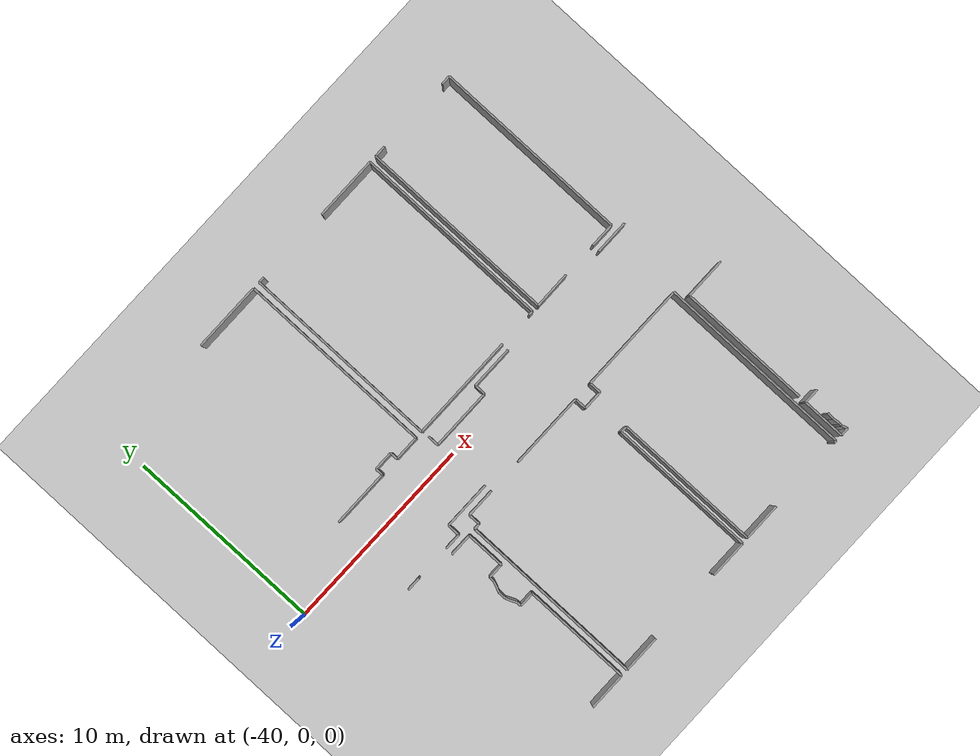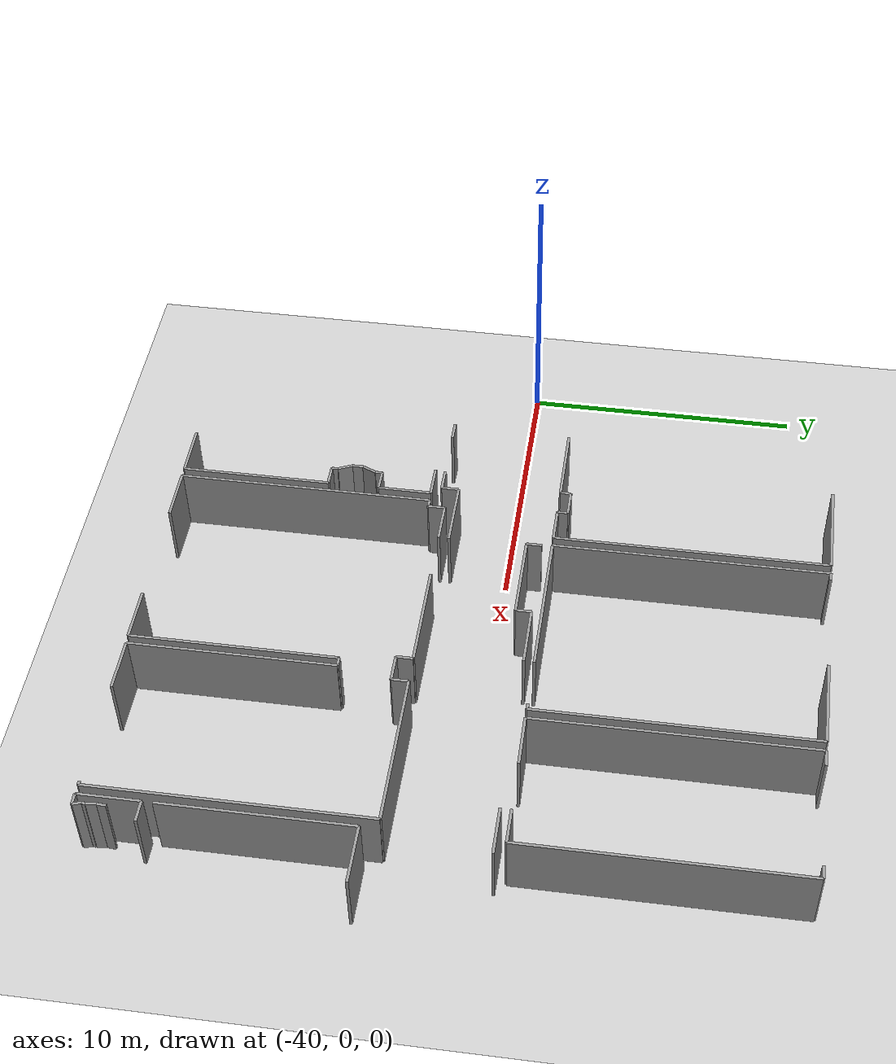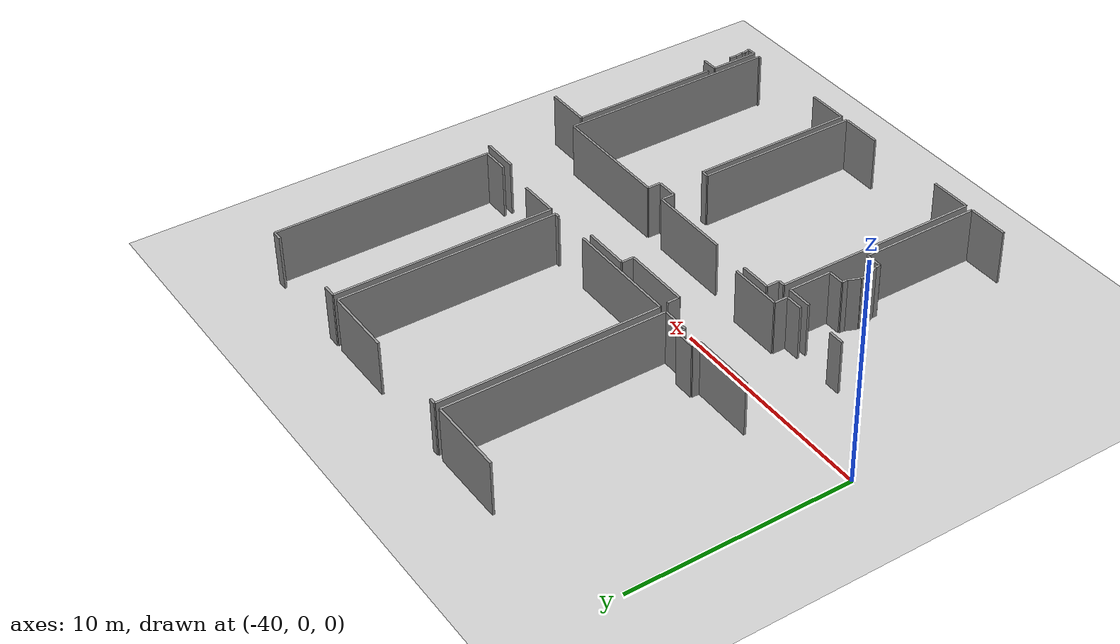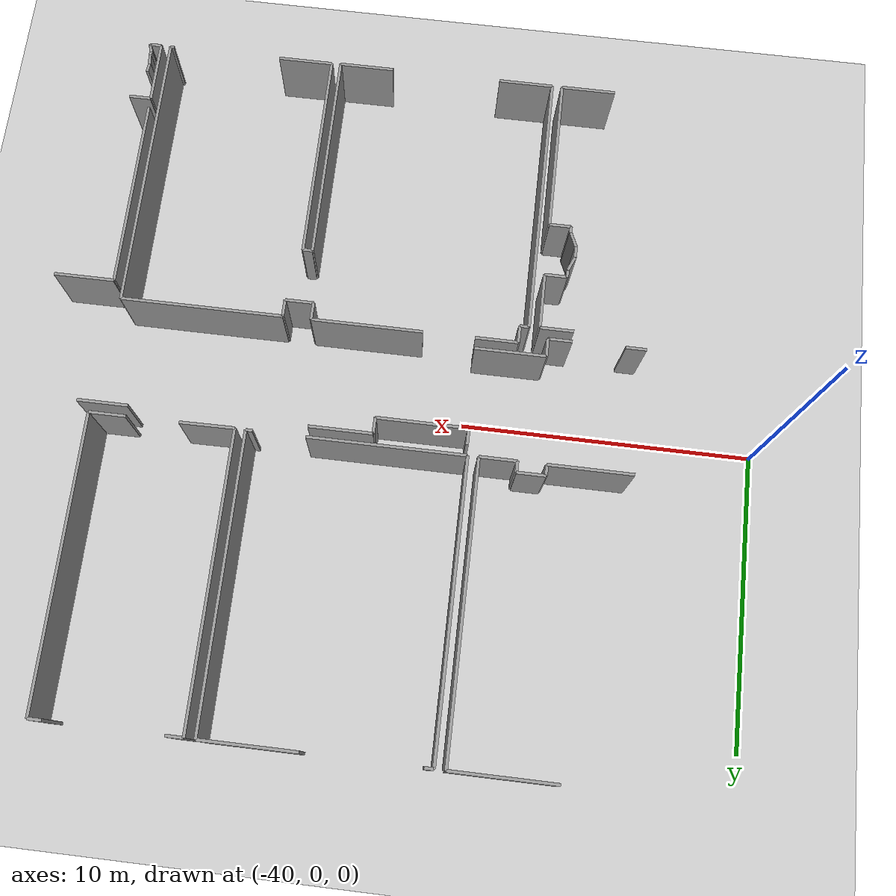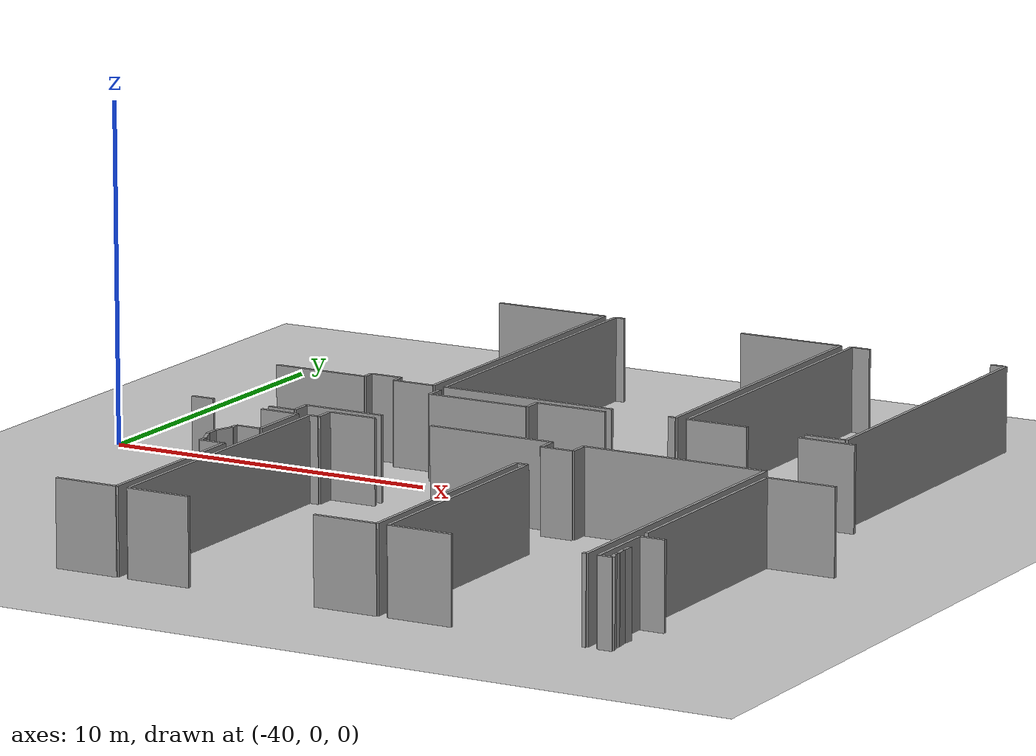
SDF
<sdf version="1.6">
 <world name="default">
  <model name="ground_plane">
   <static>1</static>
   <link name="link">
    <collision name="collision">
     <geometry><plane><normal>0 0 1</normal><size>100 100</size></plane></geometry>
     <surface><friction><ode><mu>100</mu><mu2>50</mu2></ode></friction></surface>
    </collision>
    <visual name="visual">
     <cast_shadows>0</cast_shadows>
     <geometry><plane><normal>0 0 1</normal><size>100 100</size></plane></geometry>
     <material>
      <script><uri>file://media/materials/scripts/gazebo.material</uri><name>Gazebo/Grey</name></script>
     </material>
    </visual>
   </link>
  </model>
  <model name="0510034689_Layout1">
   <static>1</static>
   <link name="Wall_8">
    <collision name="Wall_8_Collision">
     <geometry><box><size>1.89593007687 0.1 2.5</size></box></geometry>
     <pose>0.947965038435 0 1.25 0 0 0</pose>
    </collision>
    <visual name="Wall_8_Visual">
     <pose>0.947965038435 0 1.25 0 0 0</pose>
     <geometry><box><size>1.89593007687 0.1 2.5</size></box></geometry>
     <material>
      <script><uri>file://media/materials/scripts/gazebo.material</uri><name>Gazebo/Grey</name></script>
      <ambient>1 1 1 1</ambient>
     </material>
    </visual>
    <pose>22.2949142777 -24.6649855131 0 0 0 0.0</pose>
   </link>
   <link name="Wall_9">
    <collision name="Wall_9_Collision">
     <geometry><box><size>5.42977926292 0.1 2.5</size></box></geometry>
     <pose>2.71488963146 0 1.25 0 0 0</pose>
    </collision>
    <visual name="Wall_9_Visual">
     <pose>2.71488963146 0 1.25 0 0 0</pose>
     <geometry><box><size>5.42977926292 0.1 2.5</size></box></geometry>
     <material>
      <script><uri>file://media/materials/scripts/gazebo.material</uri><name>Gazebo/Grey</name></script>
      <ambient>1 1 1 1</ambient>
     </material>
    </visual>
    <pose>24.1908443545 -24.6649855131 0 0 0 1.57079632679</pose>
   </link>
   <link name="Wall_10">
    <collision name="Wall_10_Collision">
     <geometry><box><size>0.755630743536 0.1 2.5</size></box></geometry>
     <pose>0.377815371768 0 1.25 0 0 0</pose>
    </collision>
    <visual name="Wall_10_Visual">
     <pose>0.377815371768 0 1.25 0 0 0</pose>
     <geometry><box><size>0.755630743536 0.1 2.5</size></box></geometry>
     <material>
      <script><uri>file://media/materials/scripts/gazebo.material</uri><name>Gazebo/Grey</name></script>
      <ambient>1 1 1 1</ambient>
     </material>
    </visual>
    <pose>24.1908443545 -19.2352062501 0 0 0 3.14159265359</pose>
   </link>
   <link name="Wall_11">
    <collision name="Wall_11_Collision">
     <geometry><box><size>0.221333560082 0.1 2.5</size></box></geometry>
     <pose>0.110666780041 0 1.25 0 0 0</pose>
    </collision>
    <visual name="Wall_11_Visual">
     <pose>0.110666780041 0 1.25 0 0 0</pose>
     <geometry><box><size>0.221333560082 0.1 2.5</size></box></geometry>
     <material>
      <script><uri>file://media/materials/scripts/gazebo.material</uri><name>Gazebo/Grey</name></script>
      <ambient>1 1 1 1</ambient>
     </material>
    </visual>
    <pose>23.435213611 -19.2352062501 0 0 0 1.57079632679</pose>
   </link>
   <link name="Wall_12">
    <collision name="Wall_12_Collision">
     <geometry><box><size>0.56188615846 0.1 2.5</size></box></geometry>
     <pose>0.28094307923 0 1.25 0 0 0</pose>
    </collision>
    <visual name="Wall_12_Visual">
     <pose>0.28094307923 0 1.25 0 0 0</pose>
     <geometry><box><size>0.56188615846 0.1 2.5</size></box></geometry>
     <material>
      <script><uri>file://media/materials/scripts/gazebo.material</uri><name>Gazebo/Grey</name></script>
      <ambient>1 1 1 1</ambient>
     </material>
    </visual>
    <pose>23.435213611 -19.0138726901 0 0 0 1.98331023317</pose>
   </link>
   <link name="Wall_13">
    <collision name="Wall_13_Collision">
     <geometry><box><size>0.396224868674 0.1 2.5</size></box></geometry>
     <pose>0.198112434337 0 1.25 0 0 0</pose>
    </collision>
    <visual name="Wall_13_Visual">
     <pose>0.198112434337 0 1.25 0 0 0</pose>
     <geometry><box><size>0.396224868674 0.1 2.5</size></box></geometry>
     <material>
      <script><uri>file://media/materials/scripts/gazebo.material</uri><name>Gazebo/Grey</name></script>
      <ambient>1 1 1 1</ambient>
     </material>
    </visual>
    <pose>23.2099457961 -18.4991198691 0 0 0 1.57688209407</pose>
   </link>
   <link name="Wall_14">
    <collision name="Wall_14_Collision">
     <geometry><box><size>0.553743081985 0.1 2.5</size></box></geometry>
     <pose>0.276871540993 0 1.25 0 0 0</pose>
    </collision>
    <visual name="Wall_14_Visual">
     <pose>0.276871540993 0 1.25 0 0 0</pose>
     <geometry><box><size>0.553743081985 0.1 2.5</size></box></geometry>
     <material>
      <script><uri>file://media/materials/scripts/gazebo.material</uri><name>Gazebo/Grey</name></script>
      <ambient>1 1 1 1</ambient>
     </material>
    </visual>
    <pose>23.2075344787 -18.1029023378 0 0 0 1.17032835829</pose>
   </link>
   <link name="Wall_15">
    <collision name="Wall_15_Collision">
     <geometry><box><size>0.246715849082 0.1 2.5</size></box></geometry>
     <pose>0.123357924541 0 1.25 0 0 0</pose>
    </collision>
    <visual name="Wall_15_Visual">
     <pose>0.123357924541 0 1.25 0 0 0</pose>
     <geometry><box><size>0.246715849082 0.1 2.5</size></box></geometry>
     <material>
      <script><uri>file://media/materials/scripts/gazebo.material</uri><name>Gazebo/Grey</name></script>
      <ambient>1 1 1 1</ambient>
     </material>
    </visual>
    <pose>23.4234108466 -17.5929721518 0 0 0 1.57079632679</pose>
   </link>
   <link name="Wall_16">
    <collision name="Wall_16_Collision">
     <geometry><box><size>0.766164393471 0.1 2.5</size></box></geometry>
     <pose>0.383082196736 0 1.25 0 0 0</pose>
    </collision>
    <visual name="Wall_16_Visual">
     <pose>0.383082196736 0 1.25 0 0 0</pose>
     <geometry><box><size>0.766164393471 0.1 2.5</size></box></geometry>
     <material>
      <script><uri>file://media/materials/scripts/gazebo.material</uri><name>Gazebo/Grey</name></script>
      <ambient>1 1 1 1</ambient>
     </material>
    </visual>
    <pose>23.4234108466 -17.3462563027 0 0 0 0.0</pose>
   </link>
   <link name="Wall_17">
    <collision name="Wall_17_Collision">
     <geometry><box><size>1.94580627476 0.1 2.5</size></box></geometry>
     <pose>0.972903137378 0 1.25 0 0 0</pose>
    </collision>
    <visual name="Wall_17_Visual">
     <pose>0.972903137378 0 1.25 0 0 0</pose>
     <geometry><box><size>1.94580627476 0.1 2.5</size></box></geometry>
     <material>
      <script><uri>file://media/materials/scripts/gazebo.material</uri><name>Gazebo/Grey</name></script>
      <ambient>1 1 1 1</ambient>
     </material>
    </visual>
    <pose>24.1895752401 -17.3462563027 0 0 0 1.57079632679</pose>
   </link>
   <link name="Wall_18">
    <collision name="Wall_18_Collision">
     <geometry><box><size>1.15311738928 0.1 2.5</size></box></geometry>
     <pose>0.57655869464 0 1.25 0 0 0</pose>
    </collision>
    <visual name="Wall_18_Visual">
     <pose>0.57655869464 0 1.25 0 0 0</pose>
     <geometry><box><size>1.15311738928 0.1 2.5</size></box></geometry>
     <material>
      <script><uri>file://media/materials/scripts/gazebo.material</uri><name>Gazebo/Grey</name></script>
      <ambient>1 1 1 1</ambient>
     </material>
    </visual>
    <pose>24.1895752401 -15.400450028 0 0 0 3.14159265359</pose>
   </link>
   <link name="Wall_53">
    <collision name="Wall_53_Collision">
     <geometry><box><size>3.50148676758 0.1 2.5</size></box></geometry>
     <pose>1.75074338379 0 1.25 0 0 0</pose>
    </collision>
    <visual name="Wall_53_Visual">
     <pose>1.75074338379 0 1.25 0 0 0</pose>
     <geometry><box><size>3.50148676758 0.1 2.5</size></box></geometry>
     <material>
      <script><uri>file://media/materials/scripts/gazebo.material</uri><name>Gazebo/Grey</name></script>
      <ambient>1 1 1 1</ambient>
     </material>
    </visual>
    <pose>22.2826038675 -0.748650614061 0 0 0 0.0</pose>
   </link>
   <link name="Wall_54">
    <collision name="Wall_54_Collision">
     <geometry><box><size>9.92942454543 0.1 2.5</size></box></geometry>
     <pose>4.96471227272 0 1.25 0 0 0</pose>
    </collision>
    <visual name="Wall_54_Visual">
     <pose>4.96471227272 0 1.25 0 0 0</pose>
     <geometry><box><size>9.92942454543 0.1 2.5</size></box></geometry>
     <material>
      <script><uri>file://media/materials/scripts/gazebo.material</uri><name>Gazebo/Grey</name></script>
      <ambient>1 1 1 1</ambient>
     </material>
    </visual>
    <pose>25.7840906351 -0.748650614061 0 0 0 -1.57079632679</pose>
   </link>
   <link name="Wall_55">
    <collision name="Wall_55_Collision">
     <geometry><box><size>1.26632239822 0.1 2.5</size></box></geometry>
     <pose>0.63316119911 0 1.25 0 0 0</pose>
    </collision>
    <visual name="Wall_55_Visual">
     <pose>0.63316119911 0 1.25 0 0 0</pose>
     <geometry><box><size>1.26632239822 0.1 2.5</size></box></geometry>
     <material>
      <script><uri>file://media/materials/scripts/gazebo.material</uri><name>Gazebo/Grey</name></script>
      <ambient>1 1 1 1</ambient>
     </material>
    </visual>
    <pose>25.7840906351 -10.6780751595 0 0 0 3.14159265359</pose>
   </link>
   <link name="Wall_56">
    <collision name="Wall_56_Collision">
     <geometry><box><size>0.382384183788 0.1 2.5</size></box></geometry>
     <pose>0.191192091894 0 1.25 0 0 0</pose>
    </collision>
    <visual name="Wall_56_Visual">
     <pose>0.191192091894 0 1.25 0 0 0</pose>
     <geometry><box><size>0.382384183788 0.1 2.5</size></box></geometry>
     <material>
      <script><uri>file://media/materials/scripts/gazebo.material</uri><name>Gazebo/Grey</name></script>
      <ambient>1 1 1 1</ambient>
     </material>
    </visual>
    <pose>24.5177682369 -10.6780751595 0 0 0 1.57079632679</pose>
   </link>
   <link name="Wall_57">
    <collision name="Wall_57_Collision">
     <geometry><box><size>0.970364908478 0.1 2.5</size></box></geometry>
     <pose>0.485182454239 0 1.25 0 0 0</pose>
    </collision>
    <visual name="Wall_57_Visual">
     <pose>0.485182454239 0 1.25 0 0 0</pose>
     <geometry><box><size>0.970364908478 0.1 2.5</size></box></geometry>
     <material>
      <script><uri>file://media/materials/scripts/gazebo.material</uri><name>Gazebo/Grey</name></script>
      <ambient>1 1 1 1</ambient>
     </material>
    </visual>
    <pose>24.5177682369 -10.2956909757 0 0 0 3.14159265359</pose>
   </link>
   <link name="Wall_58">
    <collision name="Wall_58_Collision">
     <geometry><box><size>0.378830663328 0.1 2.5</size></box></geometry>
     <pose>0.189415331664 0 1.25 0 0 0</pose>
    </collision>
    <visual name="Wall_58_Visual">
     <pose>0.189415331664 0 1.25 0 0 0</pose>
     <geometry><box><size>0.378830663328 0.1 2.5</size></box></geometry>
     <material>
      <script><uri>file://media/materials/scripts/gazebo.material</uri><name>Gazebo/Grey</name></script>
      <ambient>1 1 1 1</ambient>
     </material>
    </visual>
    <pose>23.5474033284 -10.2956909757 0 0 0 -1.57079632679</pose>
   </link>
   <link name="Wall_59">
    <collision name="Wall_59_Collision">
     <geometry><box><size>2.88253965031 0.1 2.5</size></box></geometry>
     <pose>1.44126982515 0 1.25 0 0 0</pose>
    </collision>
    <visual name="Wall_59_Visual">
     <pose>1.44126982515 0 1.25 0 0 0</pose>
     <geometry><box><size>2.88253965031 0.1 2.5</size></box></geometry>
     <material>
      <script><uri>file://media/materials/scripts/gazebo.material</uri><name>Gazebo/Grey</name></script>
      <ambient>1 1 1 1</ambient>
     </material>
    </visual>
    <pose>23.5474033284 -10.674521639 0 0 0 3.14159265359</pose>
   </link>
   <link name="Wall_66">
    <collision name="Wall_66_Collision">
     <geometry><box><size>9.91990618706 0.1 2.5</size></box></geometry>
     <pose>4.95995309353 0 1.25 0 0 0</pose>
    </collision>
    <visual name="Wall_66_Visual">
     <pose>4.95995309353 0 1.25 0 0 0</pose>
     <geometry><box><size>9.91990618706 0.1 2.5</size></box></geometry>
     <material>
      <script><uri>file://media/materials/scripts/gazebo.material</uri><name>Gazebo/Grey</name></script>
      <ambient>1 1 1 1</ambient>
     </material>
    </visual>
    <pose>26.1546720545 -10.6724910559 0 0 0 1.57079632679</pose>
   </link>
   <link name="Wall_67">
    <collision name="Wall_67_Collision">
     <geometry><box><size>0.303445264997 0.1 2.5</size></box></geometry>
     <pose>0.151722632499 0 1.25 0 0 0</pose>
    </collision>
    <visual name="Wall_67_Visual">
     <pose>0.151722632499 0 1.25 0 0 0</pose>
     <geometry><box><size>0.303445264997 0.1 2.5</size></box></geometry>
     <material>
      <script><uri>file://media/materials/scripts/gazebo.material</uri><name>Gazebo/Grey</name></script>
      <ambient>1 1 1 1</ambient>
     </material>
    </visual>
    <pose>26.1546720545 -0.752584868856 0 0 0 0.0</pose>
   </link>
   <link name="Wall_68">
    <collision name="Wall_68_Collision">
     <geometry><box><size>3.20540236639 0.1 2.5</size></box></geometry>
     <pose>1.6027011832 0 1.25 0 0 0</pose>
    </collision>
    <visual name="Wall_68_Visual">
     <pose>1.6027011832 0 1.25 0 0 0</pose>
     <geometry><box><size>3.20540236639 0.1 2.5</size></box></geometry>
     <material>
      <script><uri>file://media/materials/scripts/gazebo.material</uri><name>Gazebo/Grey</name></script>
      <ambient>1 1 1 1</ambient>
     </material>
    </visual>
    <pose>30.306960712 -0.752584868856 0 0 0 0.0</pose>
   </link>
   <link name="Wall_69">
    <collision name="Wall_69_Collision">
     <geometry><box><size>9.92523646775 0.1 2.5</size></box></geometry>
     <pose>4.96261823387 0 1.25 0 0 0</pose>
    </collision>
    <visual name="Wall_69_Visual">
     <pose>4.96261823387 0 1.25 0 0 0</pose>
     <geometry><box><size>9.92523646775 0.1 2.5</size></box></geometry>
     <material>
      <script><uri>file://media/materials/scripts/gazebo.material</uri><name>Gazebo/Grey</name></script>
      <ambient>1 1 1 1</ambient>
     </material>
    </visual>
    <pose>33.5123630784 -0.752584868856 0 0 0 -1.57079632679</pose>
   </link>
   <link name="Wall_70">
    <collision name="Wall_70_Collision">
     <geometry><box><size>0.228440601002 0.1 2.5</size></box></geometry>
     <pose>0.114220300501 0 1.25 0 0 0</pose>
    </collision>
    <visual name="Wall_70_Visual">
     <pose>0.114220300501 0 1.25 0 0 0</pose>
     <geometry><box><size>0.228440601002 0.1 2.5</size></box></geometry>
     <material>
      <script><uri>file://media/materials/scripts/gazebo.material</uri><name>Gazebo/Grey</name></script>
      <ambient>1 1 1 1</ambient>
     </material>
    </visual>
    <pose>33.5123630784 -10.6778213366 0 0 0 3.14159265359</pose>
   </link>
   <link name="Wall_71">
    <collision name="Wall_71_Collision">
     <geometry><box><size>5.35668092261 0.1 2.5</size></box></geometry>
     <pose>2.6783404613 0 1.25 0 0 0</pose>
    </collision>
    <visual name="Wall_71_Visual">
     <pose>2.6783404613 0 1.25 0 0 0</pose>
     <geometry><box><size>5.35668092261 0.1 2.5</size></box></geometry>
     <material>
      <script><uri>file://media/materials/scripts/gazebo.material</uri><name>Gazebo/Grey</name></script>
      <ambient>1 1 1 1</ambient>
     </material>
    </visual>
    <pose>31.5113503251 -10.6778213366 0 0 0 3.14059758189</pose>
   </link>
   <link name="Wall_72">
    <collision name="Wall_72_Collision">
     <geometry><box><size>9.93602394057 0.1 2.5</size></box></geometry>
     <pose>4.96801197029 0 1.25 0 0 0</pose>
    </collision>
    <visual name="Wall_72_Visual">
     <pose>4.96801197029 0 1.25 0 0 0</pose>
     <geometry><box><size>9.93602394057 0.1 2.5</size></box></geometry>
     <material>
      <script><uri>file://media/materials/scripts/gazebo.material</uri><name>Gazebo/Grey</name></script>
      <ambient>1 1 1 1</ambient>
     </material>
    </visual>
    <pose>33.8772334828 -10.6931776215 0 0 0 1.57079632679</pose>
   </link>
   <link name="Wall_73">
    <collision name="Wall_73_Collision">
     <geometry><box><size>0.590392042145 0.1 2.5</size></box></geometry>
     <pose>0.295196021072 0 1.25 0 0 0</pose>
    </collision>
    <visual name="Wall_73_Visual">
     <pose>0.295196021072 0 1.25 0 0 0</pose>
     <geometry><box><size>0.590392042145 0.1 2.5</size></box></geometry>
     <material>
      <script><uri>file://media/materials/scripts/gazebo.material</uri><name>Gazebo/Grey</name></script>
      <ambient>1 1 1 1</ambient>
     </material>
    </visual>
    <pose>33.8772334828 -0.757153680876 0 0 0 0.0</pose>
   </link>
   <link name="Wall_74">
    <collision name="Wall_74_Collision">
     <geometry><box><size>0.461196191134 0.1 2.5</size></box></geometry>
     <pose>0.230598095567 0 1.25 0 0 0</pose>
    </collision>
    <visual name="Wall_74_Visual">
     <pose>0.230598095567 0 1.25 0 0 0</pose>
     <geometry><box><size>0.461196191134 0.1 2.5</size></box></geometry>
     <material>
      <script><uri>file://media/materials/scripts/gazebo.material</uri><name>Gazebo/Grey</name></script>
      <ambient>1 1 1 1</ambient>
     </material>
    </visual>
    <pose>38.3098695223 -0.757153680876 0 0 0 0.0</pose>
   </link>
   <link name="Wall_75">
    <collision name="Wall_75_Collision">
     <geometry><box><size>9.91800251538 0.1 2.5</size></box></geometry>
     <pose>4.95900125769 0 1.25 0 0 0</pose>
    </collision>
    <visual name="Wall_75_Visual">
     <pose>4.95900125769 0 1.25 0 0 0</pose>
     <geometry><box><size>9.91800251538 0.1 2.5</size></box></geometry>
     <material>
      <script><uri>file://media/materials/scripts/gazebo.material</uri><name>Gazebo/Grey</name></script>
      <ambient>1 1 1 1</ambient>
     </material>
    </visual>
    <pose>38.7710657135 -0.757153680876 0 0 0 -1.57079632679</pose>
   </link>
   <link name="Wall_76">
    <collision name="Wall_76_Collision">
     <geometry><box><size>1.24957008748 0.1 2.5</size></box></geometry>
     <pose>0.62478504374 0 1.25 0 0 0</pose>
    </collision>
    <visual name="Wall_76_Visual">
     <pose>0.62478504374 0 1.25 0 0 0</pose>
     <geometry><box><size>1.24957008748 0.1 2.5</size></box></geometry>
     <material>
      <script><uri>file://media/materials/scripts/gazebo.material</uri><name>Gazebo/Grey</name></script>
      <ambient>1 1 1 1</ambient>
     </material>
    </visual>
    <pose>38.7710657135 -10.6751561963 0 0 0 3.14159265359</pose>
   </link>
   <link name="Wall_77">
    <collision name="Wall_77_Collision">
     <geometry><box><size>1.85845166818 0.1 2.5</size></box></geometry>
     <pose>0.929225834089 0 1.25 0 0 0</pose>
    </collision>
    <visual name="Wall_77_Visual">
     <pose>0.929225834089 0 1.25 0 0 0</pose>
     <geometry><box><size>1.85845166818 0.1 2.5</size></box></geometry>
     <material>
      <script><uri>file://media/materials/scripts/gazebo.material</uri><name>Gazebo/Grey</name></script>
      <ambient>1 1 1 1</ambient>
     </material>
    </visual>
    <pose>35.7355977719 -10.6751561963 0 0 0 -3.13189549119</pose>
   </link>
   <link name="Wall_84">
    <collision name="Wall_84_Collision">
     <geometry><box><size>0.555745217659 0.1 2.5</size></box></geometry>
     <pose>0.27787260883 0 1.25 0 0 0</pose>
    </collision>
    <visual name="Wall_84_Visual">
     <pose>0.27787260883 0 1.25 0 0 0</pose>
     <geometry><box><size>0.555745217659 0.1 2.5</size></box></geometry>
     <material>
      <script><uri>file://media/materials/scripts/gazebo.material</uri><name>Gazebo/Grey</name></script>
      <ambient>1 1 1 1</ambient>
     </material>
    </visual>
    <pose>26.2111476475 -11.04611835 0 0 0 -1.57079632679</pose>
   </link>
   <link name="Wall_85">
    <collision name="Wall_85_Collision">
     <geometry><box><size>3.10742673085 0.1 2.5</size></box></geometry>
     <pose>1.55371336543 0 1.25 0 0 0</pose>
    </collision>
    <visual name="Wall_85_Visual">
     <pose>1.55371336543 0 1.25 0 0 0</pose>
     <geometry><box><size>3.10742673085 0.1 2.5</size></box></geometry>
     <material>
      <script><uri>file://media/materials/scripts/gazebo.material</uri><name>Gazebo/Grey</name></script>
      <ambient>1 1 1 1</ambient>
     </material>
    </visual>
    <pose>26.2111476475 -11.6018635677 0 0 0 0.0</pose>
   </link>
   <link name="Wall_86">
    <collision name="Wall_86_Collision">
     <geometry><box><size>0.556760509219 0.1 2.5</size></box></geometry>
     <pose>0.27838025461 0 1.25 0 0 0</pose>
    </collision>
    <visual name="Wall_86_Visual">
     <pose>0.27838025461 0 1.25 0 0 0</pose>
     <geometry><box><size>0.556760509219 0.1 2.5</size></box></geometry>
     <material>
      <script><uri>file://media/materials/scripts/gazebo.material</uri><name>Gazebo/Grey</name></script>
      <ambient>1 1 1 1</ambient>
     </material>
    </visual>
    <pose>29.3185743784 -11.6018635677 0 0 0 1.57079632679</pose>
   </link>
   <link name="Wall_87">
    <collision name="Wall_87_Collision">
     <geometry><box><size>2.17564290165 0.1 2.5</size></box></geometry>
     <pose>1.08782145083 0 1.25 0 0 0</pose>
    </collision>
    <visual name="Wall_87_Visual">
     <pose>1.08782145083 0 1.25 0 0 0</pose>
     <geometry><box><size>2.17564290165 0.1 2.5</size></box></geometry>
     <material>
      <script><uri>file://media/materials/scripts/gazebo.material</uri><name>Gazebo/Grey</name></script>
      <ambient>1 1 1 1</ambient>
     </material>
    </visual>
    <pose>29.3185743784 -11.0451030584 0 0 0 0.0</pose>
   </link>
   <link name="Wall_88">
    <collision name="Wall_88_Collision">
     <geometry><box><size>1.71736567375 0.1 2.5</size></box></geometry>
     <pose>0.858682836877 0 1.25 0 0 0</pose>
    </collision>
    <visual name="Wall_88_Visual">
     <pose>0.858682836877 0 1.25 0 0 0</pose>
     <geometry><box><size>1.71736567375 0.1 2.5</size></box></geometry>
     <material>
      <script><uri>file://media/materials/scripts/gazebo.material</uri><name>Gazebo/Grey</name></script>
      <ambient>1 1 1 1</ambient>
     </material>
    </visual>
    <pose>37.5193381314 -11.0451030584 0 0 0 0.0</pose>
   </link>
   <link name="Wall_101">
    <collision name="Wall_101_Collision">
     <geometry><box><size>2.43314622356 0.1 2.5</size></box></geometry>
     <pose>1.21657311178 0 1.25 0 0 0</pose>
    </collision>
    <visual name="Wall_101_Visual">
     <pose>1.21657311178 0 1.25 0 0 0</pose>
     <geometry><box><size>2.43314622356 0.1 2.5</size></box></geometry>
     <material>
      <script><uri>file://media/materials/scripts/gazebo.material</uri><name>Gazebo/Grey</name></script>
      <ambient>1 1 1 1</ambient>
     </material>
    </visual>
    <pose>26.3174994384 -14.4086370853 0 0 0 3.14159265359</pose>
   </link>
   <link name="Wall_102">
    <collision name="Wall_102_Collision">
     <geometry><box><size>0.624404309405 0.1 2.5</size></box></geometry>
     <pose>0.312202154703 0 1.25 0 0 0</pose>
    </collision>
    <visual name="Wall_102_Visual">
     <pose>0.312202154703 0 1.25 0 0 0</pose>
     <geometry><box><size>0.624404309405 0.1 2.5</size></box></geometry>
     <material>
      <script><uri>file://media/materials/scripts/gazebo.material</uri><name>Gazebo/Grey</name></script>
      <ambient>1 1 1 1</ambient>
     </material>
    </visual>
    <pose>23.8843532149 -14.4086370853 0 0 0 -1.57079632679</pose>
   </link>
   <link name="Wall_103">
    <collision name="Wall_103_Collision">
     <geometry><box><size>0.826828064182 0.1 2.5</size></box></geometry>
     <pose>0.413414032091 0 1.25 0 0 0</pose>
    </collision>
    <visual name="Wall_103_Visual">
     <pose>0.413414032091 0 1.25 0 0 0</pose>
     <geometry><box><size>0.826828064182 0.1 2.5</size></box></geometry>
     <material>
      <script><uri>file://media/materials/scripts/gazebo.material</uri><name>Gazebo/Grey</name></script>
      <ambient>1 1 1 1</ambient>
     </material>
    </visual>
    <pose>23.8843532149 -15.0330413947 0 0 0 3.14159265359</pose>
   </link>
   <link name="Wall_104">
    <collision name="Wall_104_Collision">
     <geometry><box><size>0.705881457096 0.1 2.5</size></box></geometry>
     <pose>0.352940728548 0 1.25 0 0 0</pose>
    </collision>
    <visual name="Wall_104_Visual">
     <pose>0.352940728548 0 1.25 0 0 0</pose>
     <geometry><box><size>0.705881457096 0.1 2.5</size></box></geometry>
     <material>
      <script><uri>file://media/materials/scripts/gazebo.material</uri><name>Gazebo/Grey</name></script>
      <ambient>1 1 1 1</ambient>
     </material>
    </visual>
    <pose>21.2599514437 -15.0330413947 0 0 0 3.14159265359</pose>
   </link>
   <link name="Wall_115">
    <collision name="Wall_115_Collision">
     <geometry><box><size>1.90100653467 0.1 2.5</size></box></geometry>
     <pose>0.950503267335 0 1.25 0 0 0</pose>
    </collision>
    <visual name="Wall_115_Visual">
     <pose>0.950503267335 0 1.25 0 0 0</pose>
     <geometry><box><size>1.90100653467 0.1 2.5</size></box></geometry>
     <material>
      <script><uri>file://media/materials/scripts/gazebo.material</uri><name>Gazebo/Grey</name></script>
      <ambient>1 1 1 1</ambient>
     </material>
    </visual>
    <pose>24.5507652126 -24.6662546275 0 0 0 0.0</pose>
   </link>
   <link name="Wall_116">
    <collision name="Wall_116_Collision">
     <geometry><box><size>1.90963651293 0.1 2.5</size></box></geometry>
     <pose>0.954818256465 0 1.25 0 0 0</pose>
    </collision>
    <visual name="Wall_116_Visual">
     <pose>0.954818256465 0 1.25 0 0 0</pose>
     <geometry><box><size>1.90963651293 0.1 2.5</size></box></geometry>
     <material>
      <script><uri>file://media/materials/scripts/gazebo.material</uri><name>Gazebo/Grey</name></script>
      <ambient>1 1 1 1</ambient>
     </material>
    </visual>
    <pose>30.3117833469 -24.6662546275 0 0 0 0.0</pose>
   </link>
   <link name="Wall_117">
    <collision name="Wall_117_Collision">
     <geometry><box><size>7.37647391779 0.1 2.5</size></box></geometry>
     <pose>3.6882369589 0 1.25 0 0 0</pose>
    </collision>
    <visual name="Wall_117_Visual">
     <pose>3.6882369589 0 1.25 0 0 0</pose>
     <geometry><box><size>7.37647391779 0.1 2.5</size></box></geometry>
     <material>
      <script><uri>file://media/materials/scripts/gazebo.material</uri><name>Gazebo/Grey</name></script>
      <ambient>1 1 1 1</ambient>
     </material>
    </visual>
    <pose>32.2214198599 -24.6662546275 0 0 0 1.57079632679</pose>
   </link>
   <link name="Wall_118">
    <collision name="Wall_118_Collision">
     <geometry><box><size>0.326923882323 0.1 2.5</size></box></geometry>
     <pose>0.163461941161 0 1.25 0 0 0</pose>
    </collision>
    <visual name="Wall_118_Visual">
     <pose>0.163461941161 0 1.25 0 0 0</pose>
     <geometry><box><size>0.326923882323 0.1 2.5</size></box></geometry>
     <material>
      <script><uri>file://media/materials/scripts/gazebo.material</uri><name>Gazebo/Grey</name></script>
      <ambient>1 1 1 1</ambient>
     </material>
    </visual>
    <pose>32.2214198599 -17.2897807097 0 0 0 0.0</pose>
   </link>
   <link name="Wall_119">
    <collision name="Wall_119_Collision">
     <geometry><box><size>7.3584524926 0.1 2.5</size></box></geometry>
     <pose>3.6792262463 0 1.25 0 0 0</pose>
    </collision>
    <visual name="Wall_119_Visual">
     <pose>3.6792262463 0 1.25 0 0 0</pose>
     <geometry><box><size>7.3584524926 0.1 2.5</size></box></geometry>
     <material>
      <script><uri>file://media/materials/scripts/gazebo.material</uri><name>Gazebo/Grey</name></script>
      <ambient>1 1 1 1</ambient>
     </material>
    </visual>
    <pose>32.5483437422 -17.2897807097 0 0 0 -1.57079632679</pose>
   </link>
   <link name="Wall_120">
    <collision name="Wall_120_Collision">
     <geometry><box><size>1.90989033582 0.1 2.5</size></box></geometry>
     <pose>0.95494516791 0 1.25 0 0 0</pose>
    </collision>
    <visual name="Wall_120_Visual">
     <pose>0.95494516791 0 1.25 0 0 0</pose>
     <geometry><box><size>1.90989033582 0.1 2.5</size></box></geometry>
     <material>
      <script><uri>file://media/materials/scripts/gazebo.material</uri><name>Gazebo/Grey</name></script>
      <ambient>1 1 1 1</ambient>
     </material>
    </visual>
    <pose>32.5483437422 -24.6482332023 0 0 0 0.0</pose>
   </link>
   <link name="Wall_121">
    <collision name="Wall_121_Collision">
     <geometry><box><size>0.122977190206 0.1 2.5</size></box></geometry>
     <pose>0.061488595103 0 1.25 0 0 0</pose>
    </collision>
    <visual name="Wall_121_Visual">
     <pose>0.061488595103 0 1.25 0 0 0</pose>
     <geometry><box><size>0.122977190206 0.1 2.5</size></box></geometry>
     <material>
      <script><uri>file://media/materials/scripts/gazebo.material</uri><name>Gazebo/Grey</name></script>
      <ambient>1 1 1 1</ambient>
     </material>
    </visual>
    <pose>38.3313175565 -24.6482332023 0 0 0 0.0</pose>
   </link>
   <link name="Wall_122">
    <collision name="Wall_122_Collision">
     <geometry><box><size>9.8692685205 0.1 2.5</size></box></geometry>
     <pose>4.93463426025 0 1.25 0 0 0</pose>
    </collision>
    <visual name="Wall_122_Visual">
     <pose>4.93463426025 0 1.25 0 0 0</pose>
     <geometry><box><size>9.8692685205 0.1 2.5</size></box></geometry>
     <material>
      <script><uri>file://media/materials/scripts/gazebo.material</uri><name>Gazebo/Grey</name></script>
      <ambient>1 1 1 1</ambient>
     </material>
    </visual>
    <pose>38.4542947468 -24.6482332023 0 0 0 1.57079632679</pose>
   </link>
   <link name="Wall_123">
    <collision name="Wall_123_Collision">
     <geometry><box><size>5.56798582653 0.1 2.5</size></box></geometry>
     <pose>2.78399291326 0 1.25 0 0 0</pose>
    </collision>
    <visual name="Wall_123_Visual">
     <pose>2.78399291326 0 1.25 0 0 0</pose>
     <geometry><box><size>5.56798582653 0.1 2.5</size></box></geometry>
     <material>
      <script><uri>file://media/materials/scripts/gazebo.material</uri><name>Gazebo/Grey</name></script>
      <ambient>1 1 1 1</ambient>
     </material>
    </visual>
    <pose>38.4542947468 -14.7789646818 0 0 0 3.14159265359</pose>
   </link>
   <link name="Wall_124">
    <collision name="Wall_124_Collision">
     <geometry><box><size>0.59914893185 0.1 2.5</size></box></geometry>
     <pose>0.299574465925 0 1.25 0 0 0</pose>
    </collision>
    <visual name="Wall_124_Visual">
     <pose>0.299574465925 0 1.25 0 0 0</pose>
     <geometry><box><size>0.59914893185 0.1 2.5</size></box></geometry>
     <material>
      <script><uri>file://media/materials/scripts/gazebo.material</uri><name>Gazebo/Grey</name></script>
      <ambient>1 1 1 1</ambient>
     </material>
    </visual>
    <pose>32.8863089202 -14.7789646818 0 0 0 -1.57079632679</pose>
   </link>
   <link name="Wall_125">
    <collision name="Wall_125_Collision">
     <geometry><box><size>0.972903137378 0.1 2.5</size></box></geometry>
     <pose>0.486451568689 0 1.25 0 0 0</pose>
    </collision>
    <visual name="Wall_125_Visual">
     <pose>0.486451568689 0 1.25 0 0 0</pose>
     <geometry><box><size>0.972903137378 0.1 2.5</size></box></geometry>
     <material>
      <script><uri>file://media/materials/scripts/gazebo.material</uri><name>Gazebo/Grey</name></script>
      <ambient>1 1 1 1</ambient>
     </material>
    </visual>
    <pose>32.8863089202 -15.3781136137 0 0 0 3.14159265359</pose>
   </link>
   <link name="Wall_126">
    <collision name="Wall_126_Collision">
     <geometry><box><size>0.595976145725 0.1 2.5</size></box></geometry>
     <pose>0.297988072862 0 1.25 0 0 0</pose>
    </collision>
    <visual name="Wall_126_Visual">
     <pose>0.297988072862 0 1.25 0 0 0</pose>
     <geometry><box><size>0.595976145725 0.1 2.5</size></box></geometry>
     <material>
      <script><uri>file://media/materials/scripts/gazebo.material</uri><name>Gazebo/Grey</name></script>
      <ambient>1 1 1 1</ambient>
     </material>
    </visual>
    <pose>31.9134057828 -15.3781136137 0 0 0 1.57079632679</pose>
   </link>
   <link name="Wall_127">
    <collision name="Wall_127_Collision">
     <geometry><box><size>3.81939993731 0.1 2.5</size></box></geometry>
     <pose>1.90969996865 0 1.25 0 0 0</pose>
    </collision>
    <visual name="Wall_127_Visual">
     <pose>1.90969996865 0 1.25 0 0 0</pose>
     <geometry><box><size>3.81939993731 0.1 2.5</size></box></geometry>
     <material>
      <script><uri>file://media/materials/scripts/gazebo.material</uri><name>Gazebo/Grey</name></script>
      <ambient>1 1 1 1</ambient>
     </material>
    </visual>
    <pose>31.9134057828 -14.7821374679 0 0 0 3.14159265359</pose>
   </link>
   <link name="Wall_128">
    <collision name="Wall_128_Collision">
     <geometry><box><size>1.46125837774 0.1 2.5</size></box></geometry>
     <pose>0.730629188871 0 1.25 0 0 0</pose>
    </collision>
    <visual name="Wall_128_Visual">
     <pose>0.730629188871 0 1.25 0 0 0</pose>
     <geometry><box><size>1.46125837774 0.1 2.5</size></box></geometry>
     <material>
      <script><uri>file://media/materials/scripts/gazebo.material</uri><name>Gazebo/Grey</name></script>
      <ambient>1 1 1 1</ambient>
     </material>
    </visual>
    <pose>26.3244795679 -14.7821374679 0 0 0 3.14159265359</pose>
   </link>
   <link name="Wall_129">
    <collision name="Wall_129_Collision">
     <geometry><box><size>0.598006728845 0.1 2.5</size></box></geometry>
     <pose>0.299003364422 0 1.25 0 0 0</pose>
    </collision>
    <visual name="Wall_129_Visual">
     <pose>0.299003364422 0 1.25 0 0 0</pose>
     <geometry><box><size>0.598006728845 0.1 2.5</size></box></geometry>
     <material>
      <script><uri>file://media/materials/scripts/gazebo.material</uri><name>Gazebo/Grey</name></script>
      <ambient>1 1 1 1</ambient>
     </material>
    </visual>
    <pose>24.8632211902 -14.7821374679 0 0 0 -1.57079632679</pose>
   </link>
   <link name="Wall_130">
    <collision name="Wall_130_Collision">
     <geometry><box><size>0.303064530662 0.1 2.5</size></box></geometry>
     <pose>0.151532265331 0 1.25 0 0 0</pose>
    </collision>
    <visual name="Wall_130_Visual">
     <pose>0.151532265331 0 1.25 0 0 0</pose>
     <geometry><box><size>0.303064530662 0.1 2.5</size></box></geometry>
     <material>
      <script><uri>file://media/materials/scripts/gazebo.material</uri><name>Gazebo/Grey</name></script>
      <ambient>1 1 1 1</ambient>
     </material>
    </visual>
    <pose>24.8632211902 -15.3801441968 0 0 0 3.14159265359</pose>
   </link>
   <link name="Wall_131">
    <collision name="Wall_131_Collision">
     <geometry><box><size>9.28611517971 0.1 2.5</size></box></geometry>
     <pose>4.64305758986 0 1.25 0 0 0</pose>
    </collision>
    <visual name="Wall_131_Visual">
     <pose>4.64305758986 0 1.25 0 0 0</pose>
     <geometry><box><size>9.28611517971 0.1 2.5</size></box></geometry>
     <material>
      <script><uri>file://media/materials/scripts/gazebo.material</uri><name>Gazebo/Grey</name></script>
      <ambient>1 1 1 1</ambient>
     </material>
    </visual>
    <pose>24.5601566595 -15.3801441968 0 0 0 -1.5718076699</pose>
   </link>
   <link name="Wall_146">
    <collision name="Wall_146_Collision">
     <geometry><box><size>6.7072698683 0.1 2.5</size></box></geometry>
     <pose>3.35363493415 0 1.25 0 0 0</pose>
    </collision>
    <visual name="Wall_146_Visual">
     <pose>3.35363493415 0 1.25 0 0 0</pose>
     <geometry><box><size>6.7072698683 0.1 2.5</size></box></geometry>
     <material>
      <script><uri>file://media/materials/scripts/gazebo.material</uri><name>Gazebo/Grey</name></script>
      <ambient>1 1 1 1</ambient>
     </material>
    </visual>
    <pose>38.8062201837 -22.1035318186 0 0 0 1.57079632679</pose>
   </link>
   <link name="Wall_147">
    <collision name="Wall_147_Collision">
     <geometry><box><size>2.07259080831 0.1 2.5</size></box></geometry>
     <pose>1.03629540416 0 1.25 0 0 0</pose>
    </collision>
    <visual name="Wall_147_Visual">
     <pose>1.03629540416 0 1.25 0 0 0</pose>
     <geometry><box><size>2.07259080831 0.1 2.5</size></box></geometry>
     <material>
      <script><uri>file://media/materials/scripts/gazebo.material</uri><name>Gazebo/Grey</name></script>
      <ambient>1 1 1 1</ambient>
     </material>
    </visual>
    <pose>38.8062201837 -15.3962619503 0 0 0 0.0</pose>
   </link>
   <link name="Wall_155">
    <collision name="Wall_155_Collision">
     <geometry><box><size>2.18630346303 0.1 2.5</size></box></geometry>
     <pose>1.09315173152 0 1.25 0 0 0</pose>
    </collision>
    <visual name="Wall_155_Visual">
     <pose>1.09315173152 0 1.25 0 0 0</pose>
     <geometry><box><size>2.18630346303 0.1 2.5</size></box></geometry>
     <material>
      <script><uri>file://media/materials/scripts/gazebo.material</uri><name>Gazebo/Grey</name></script>
      <ambient>1 1 1 1</ambient>
     </material>
    </visual>
    <pose>38.8017782832 -24.6580053836 0 0 0 1.57079632679</pose>
   </link>
   <link name="Wall_156">
    <collision name="Wall_156_Collision">
     <geometry><box><size>0.765022190466 0.1 2.5</size></box></geometry>
     <pose>0.382511095233 0 1.25 0 0 0</pose>
    </collision>
    <visual name="Wall_156_Visual">
     <pose>0.382511095233 0 1.25 0 0 0</pose>
     <geometry><box><size>0.765022190466 0.1 2.5</size></box></geometry>
     <material>
      <script><uri>file://media/materials/scripts/gazebo.material</uri><name>Gazebo/Grey</name></script>
      <ambient>1 1 1 1</ambient>
     </material>
    </visual>
    <pose>38.8017782832 -22.4717019206 0 0 0 0.0</pose>
   </link>
   <link name="Wall_171">
    <collision name="Wall_171_Collision">
     <geometry><box><size>0.318859846984 0.1 2.5</size></box></geometry>
     <pose>0.159429923492 0 1.25 0 0 0</pose>
    </collision>
    <visual name="Wall_171_Visual">
     <pose>0.159429923492 0 1.25 0 0 0</pose>
     <geometry><box><size>0.318859846984 0.1 2.5</size></box></geometry>
     <material>
      <script><uri>file://media/materials/scripts/gazebo.material</uri><name>Gazebo/Grey</name></script>
      <ambient>1 1 1 1</ambient>
     </material>
    </visual>
    <pose>39.121722036 -23.5444843651 0 0 0 -1.6528798477</pose>
   </link>
   <link name="Wall_172">
    <collision name="Wall_172_Collision">
     <geometry><box><size>0.362807059847 0.1 2.5</size></box></geometry>
     <pose>0.181403529923 0 1.25 0 0 0</pose>
    </collision>
    <visual name="Wall_172_Visual">
     <pose>0.181403529923 0 1.25 0 0 0</pose>
     <geometry><box><size>0.362807059847 0.1 2.5</size></box></geometry>
     <material>
      <script><uri>file://media/materials/scripts/gazebo.material</uri><name>Gazebo/Grey</name></script>
      <ambient>1 1 1 1</ambient>
     </material>
    </visual>
    <pose>39.0955782783 -23.8622706234 0 0 0 -1.45932788781</pose>
   </link>
   <link name="Wall_173">
    <collision name="Wall_173_Collision">
     <geometry><box><size>0.131828251712 0.1 2.5</size></box></geometry>
     <pose>0.065914125856 0 1.25 0 0 0</pose>
    </collision>
    <visual name="Wall_173_Visual">
     <pose>0.065914125856 0 1.25 0 0 0</pose>
     <geometry><box><size>0.131828251712 0.1 2.5</size></box></geometry>
     <material>
      <script><uri>file://media/materials/scripts/gazebo.material</uri><name>Gazebo/Grey</name></script>
      <ambient>1 1 1 1</ambient>
     </material>
    </visual>
    <pose>39.1359361179 -24.2228260387 0 0 0 -1.71473558414</pose>
   </link>
   <link name="Wall_174">
    <collision name="Wall_174_Collision">
     <geometry><box><size>0.309827203223 0.1 2.5</size></box></geometry>
     <pose>0.154913601611 0 1.25 0 0 0</pose>
    </collision>
    <visual name="Wall_174_Visual">
     <pose>0.154913601611 0 1.25 0 0 0</pose>
     <geometry><box><size>0.309827203223 0.1 2.5</size></box></geometry>
     <material>
      <script><uri>file://media/materials/scripts/gazebo.material</uri><name>Gazebo/Grey</name></script>
      <ambient>1 1 1 1</ambient>
     </material>
    </visual>
    <pose>39.1170263125 -24.3532910041 0 0 0 -1.25163644018</pose>
   </link>
   <link name="Wall_175">
    <collision name="Wall_175_Collision">
     <geometry><box><size>0.412596680936 0.1 2.5</size></box></geometry>
     <pose>0.206298340468 0 1.25 0 0 0</pose>
    </collision>
    <visual name="Wall_175_Visual">
     <pose>0.206298340468 0 1.25 0 0 0</pose>
     <geometry><box><size>0.412596680936 0.1 2.5</size></box></geometry>
     <material>
      <script><uri>file://media/materials/scripts/gazebo.material</uri><name>Gazebo/Grey</name></script>
      <ambient>1 1 1 1</ambient>
     </material>
    </visual>
    <pose>39.2142404794 -24.6474717336 0 0 0 -3.11605974205</pose>
   </link>
   <pose>-56.4 12.3396063334 0 0 0 0</pose>
  </model>
 </world>
</sdf>
